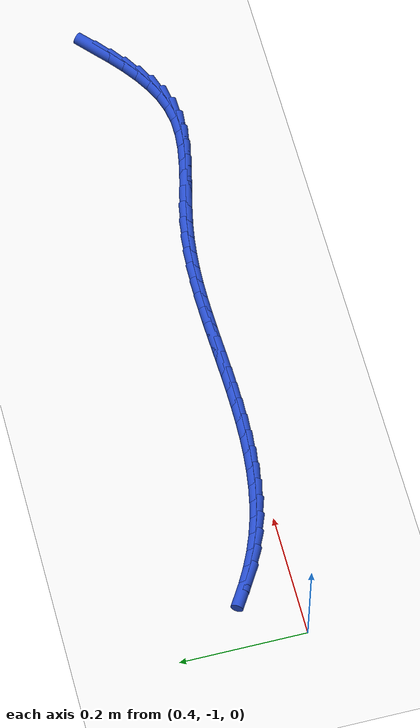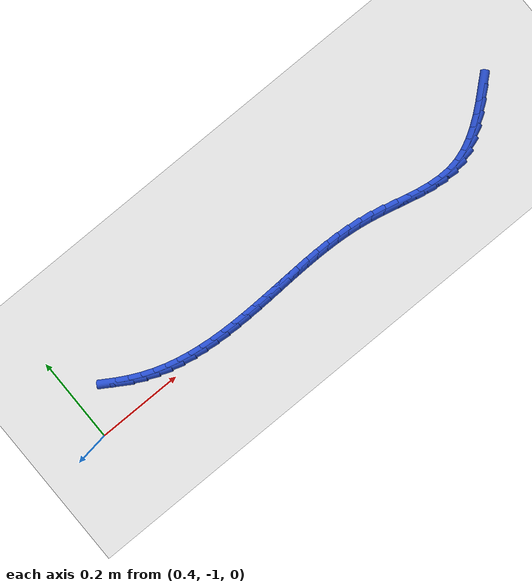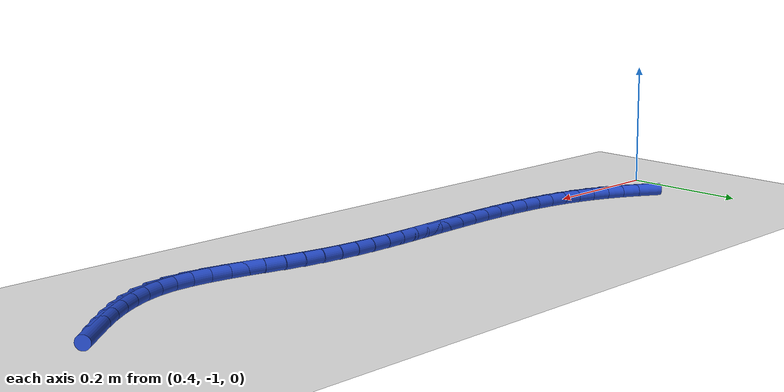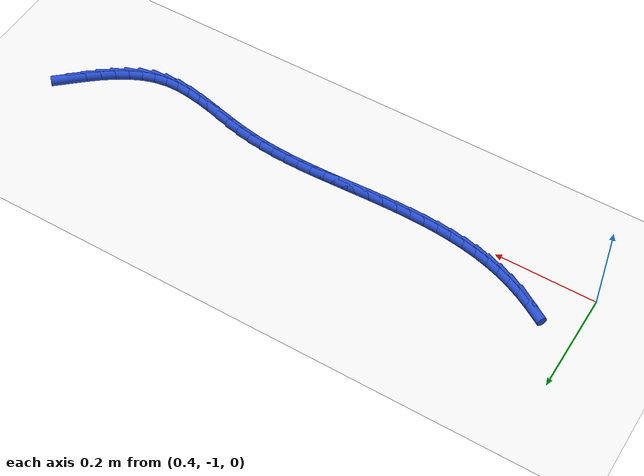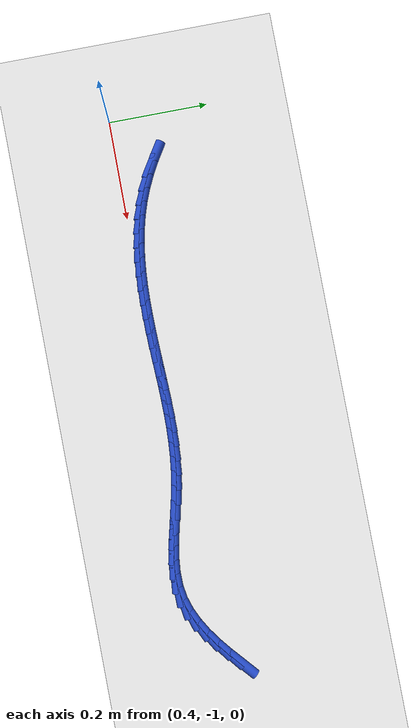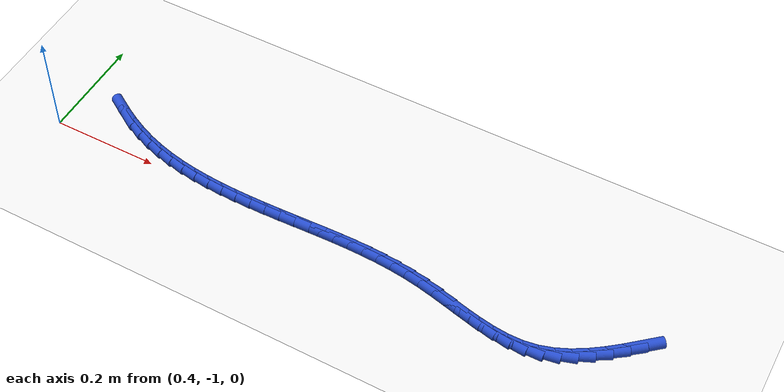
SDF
<sdf version="1.6">
 <world name="default">
  <model name="ground_plane">
   <static>1</static>
   <link name="link">
    <collision name="collision">
     <geometry><plane><normal>0 0 1</normal><size>100 100</size></plane></geometry>
     <surface><friction><ode><mu>100</mu><mu2>50</mu2></ode></friction></surface>
    </collision>
    <visual name="visual">
     <cast_shadows>0</cast_shadows>
     <geometry><plane><normal>0 0 1</normal><size>100 100</size></plane></geometry>
     <material>
      <script><uri>file://media/materials/scripts/gazebo.material</uri><name>Gazebo/WhiteGlow</name></script>
     </material>
    </visual>
   </link>
  </model>
  <model name="line">
   <link name="link_155">
    <pose>1.507306309424929 -0.9425531663431869 0.01 0 1.57 0.7214797284094565</pose>
    <collision name="collision">
     <geometry><cylinder><radius>0.01</radius><length>0.08</length></cylinder></geometry>
    </collision>
    <visual name="visual">
     <material>
      <script><name>Gazebo/Blue</name><uri>file://media/materials/scripts/gazebo.material</uri></script>
     </material>
     <geometry><cylinder><radius>0.01</radius><length>0.08</length></cylinder></geometry>
    </visual>
   </link>
   <link name="link_156">
    <pose>1.4848111989612758 -0.962341874558644 0.01 0 1.57 0.6795479382213688</pose>
    <collision name="collision">
     <geometry><cylinder><radius>0.01</radius><length>0.08</length></cylinder></geometry>
    </collision>
    <visual name="visual">
     <material>
      <script><name>Gazebo/Blue</name><uri>file://media/materials/scripts/gazebo.material</uri></script>
     </material>
     <geometry><cylinder><radius>0.01</radius><length>0.08</length></cylinder></geometry>
    </visual>
   </link>
   <link name="link_157">
    <pose>1.461996702866323 -0.9807740246340374 0.01 0 1.57 0.6192825243936706</pose>
    <collision name="collision">
     <geometry><cylinder><radius>0.01</radius><length>0.08</length></cylinder></geometry>
    </collision>
    <visual name="visual">
     <material>
      <script><name>Gazebo/Blue</name><uri>file://media/materials/scripts/gazebo.material</uri></script>
     </material>
     <geometry><cylinder><radius>0.01</radius><length>0.08</length></cylinder></geometry>
    </visual>
   </link>
   <link name="link_158">
    <pose>1.438749209625258 -0.9973454518386562 0.01 0 1.57 0.5382559575563259</pose>
    <collision name="collision">
     <geometry><cylinder><radius>0.01</radius><length>0.08</length></cylinder></geometry>
    </collision>
    <visual name="visual">
     <material>
      <script><name>Gazebo/Blue</name><uri>file://media/materials/scripts/gazebo.material</uri></script>
     </material>
     <geometry><cylinder><radius>0.01</radius><length>0.08</length></cylinder></geometry>
    </visual>
   </link>
   <link name="link_159">
    <pose>1.4149551077232643 -1.0115519914417892 0.01 0 1.57 0.43412155657971074</pose>
    <collision name="collision">
     <geometry><cylinder><radius>0.01</radius><length>0.08</length></cylinder></geometry>
    </collision>
    <visual name="visual">
     <material>
      <script><name>Gazebo/Blue</name><uri>file://media/materials/scripts/gazebo.material</uri></script>
     </material>
     <geometry><cylinder><radius>0.01</radius><length>0.08</length></cylinder></geometry>
    </visual>
   </link>
   <link name="link_160">
    <pose>1.3905007856455291 -1.022889478712727 0.01 0 1.57 0.3057882115782092</pose>
    <collision name="collision">
     <geometry><cylinder><radius>0.01</radius><length>0.08</length></cylinder></geometry>
    </collision>
    <visual name="visual">
     <material>
      <script><name>Gazebo/Blue</name><uri>file://media/materials/scripts/gazebo.material</uri></script>
     </material>
     <geometry><cylinder><radius>0.01</radius><length>0.08</length></cylinder></geometry>
    </visual>
   </link>
   <link name="link_161">
    <pose>1.365272631877237 -1.0308537489207579 0.01 0 1.57 0.15624790139943803</pose>
    <collision name="collision">
     <geometry><cylinder><radius>0.01</radius><length>0.08</length></cylinder></geometry>
    </collision>
    <visual name="visual">
     <material>
      <script><name>Gazebo/Blue</name><uri>file://media/materials/scripts/gazebo.material</uri></script>
     </material>
     <geometry><cylinder><radius>0.01</radius><length>0.08</length></cylinder></geometry>
    </visual>
   </link>
   <link name="link_162">
    <pose>1.339162601989869 -1.0349669130169603 0.01 0 1.57 0.014458430025924094</pose>
    <collision name="collision">
     <geometry><cylinder><radius>0.01</radius><length>0.08</length></cylinder></geometry>
    </collision>
    <visual name="visual">
     <material>
      <script><name>Gazebo/Blue</name><uri>file://media/materials/scripts/gazebo.material</uri></script>
     </material>
     <geometry><cylinder><radius>0.01</radius><length>0.08</length></cylinder></geometry>
    </visual>
   </link>
   <link name="link_163">
    <pose>1.3121910090530808 -1.0353569070820956 0.01 0 1.57 -0.09359081783881208</pose>
    <collision name="collision">
     <geometry><cylinder><radius>0.01</radius><length>0.08</length></cylinder></geometry>
    </collision>
    <visual name="visual">
     <material>
      <script><name>Gazebo/Blue</name><uri>file://media/materials/scripts/gazebo.material</uri></script>
     </material>
     <geometry><cylinder><radius>0.01</radius><length>0.08</length></cylinder></geometry>
    </visual>
   </link>
   <link name="link_164">
    <pose>1.284506698607868 -1.0327583181696307 0.01 0 1.57 -0.16924709904499669</pose>
    <collision name="collision">
     <geometry><cylinder><radius>0.01</radius><length>0.08</length></cylinder></geometry>
    </collision>
    <visual name="visual">
     <material>
      <script><name>Gazebo/Blue</name><uri>file://media/materials/scripts/gazebo.material</uri></script>
     </material>
     <geometry><cylinder><radius>0.01</radius><length>0.08</length></cylinder></geometry>
    </visual>
   </link>
   <link name="link_165">
    <pose>1.256264118276178 -1.0279321741835208 0.01 0 1.57 -0.216232717094848</pose>
    <collision name="collision">
     <geometry><cylinder><radius>0.01</radius><length>0.08</length></cylinder></geometry>
    </collision>
    <visual name="visual">
     <material>
      <script><name>Gazebo/Blue</name><uri>file://media/materials/scripts/gazebo.material</uri></script>
     </material>
     <geometry><cylinder><radius>0.01</radius><length>0.08</length></cylinder></geometry>
    </visual>
   </link>
   <link name="link_166">
    <pose>1.2276177156799584 -1.0216395030277208 0.01 0 1.57 -0.23761147607711505</pose>
    <collision name="collision">
     <geometry><cylinder><radius>0.01</radius><length>0.08</length></cylinder></geometry>
    </collision>
    <visual name="visual">
     <material>
      <script><name>Gazebo/Blue</name><uri>file://media/materials/scripts/gazebo.material</uri></script>
     </material>
     <geometry><cylinder><radius>0.01</radius><length>0.08</length></cylinder></geometry>
    </visual>
   </link>
   <link name="link_167">
    <pose>1.1987219384411576 -1.0146413326061863 0.01 0 1.57 -0.23505154469730677</pose>
    <collision name="collision">
     <geometry><cylinder><radius>0.01</radius><length>0.08</length></cylinder></geometry>
    </collision>
    <visual name="visual">
     <material>
      <script><name>Gazebo/Blue</name><uri>file://media/materials/scripts/gazebo.material</uri></script>
     </material>
     <geometry><cylinder><radius>0.01</radius><length>0.08</length></cylinder></geometry>
    </visual>
   </link>
   <link name="link_168">
    <pose>1.169731234181722 -1.0076986908228724 0.01 0 1.57 -0.2086646734113698</pose>
    <collision name="collision">
     <geometry><cylinder><radius>0.01</radius><length>0.08</length></cylinder></geometry>
    </collision>
    <visual name="visual">
     <material>
      <script><name>Gazebo/Blue</name><uri>file://media/materials/scripts/gazebo.material</uri></script>
     </material>
     <geometry><cylinder><radius>0.01</radius><length>0.08</length></cylinder></geometry>
    </visual>
   </link>
   <link name="link_169">
    <pose>1.1408000501317748 -1.001572603713776 0.01 0 1.57 -0.16260902705012623</pose>
    <collision name="collision">
     <geometry><cylinder><radius>0.01</radius><length>0.08</length></cylinder></geometry>
    </collision>
    <visual name="visual">
     <material>
      <script><name>Gazebo/Blue</name><uri>file://media/materials/scripts/gazebo.material</uri></script>
     </material>
     <geometry><cylinder><radius>0.01</radius><length>0.08</length></cylinder></geometry>
    </visual>
   </link>
   <link name="link_170">
    <pose>1.1120474737868935 -0.9968555259299609 0.01 0 1.57 -0.11649344777591115</pose>
    <collision name="collision">
     <geometry><cylinder><radius>0.01</radius><length>0.08</length></cylinder></geometry>
    </collision>
    <visual name="visual">
     <material>
      <script><name>Gazebo/Blue</name><uri>file://media/materials/scripts/gazebo.material</uri></script>
     </material>
     <geometry><cylinder><radius>0.01</radius><length>0.08</length></cylinder></geometry>
    </visual>
   </link>
   <link name="link_171">
    <pose>1.0834605001633624 -0.9935101841999918 0.01 0 1.57 -0.07566354206697357</pose>
    <collision name="collision">
     <geometry><cylinder><radius>0.01</radius><length>0.08</length></cylinder></geometry>
    </collision>
    <visual name="visual">
     <material>
      <script><name>Gazebo/Blue</name><uri>file://media/materials/scripts/gazebo.material</uri></script>
     </material>
     <geometry><cylinder><radius>0.01</radius><length>0.08</length></cylinder></geometry>
    </visual>
   </link>
   <link name="link_172">
    <pose>1.0549952852755464 -0.9913522856740834 0.01 0 1.57 -0.04065592242352165</pose>
    <collision name="collision">
     <geometry><cylinder><radius>0.01</radius><length>0.08</length></cylinder></geometry>
    </collision>
    <visual name="visual">
     <material>
      <script><name>Gazebo/Blue</name><uri>file://media/materials/scripts/gazebo.material</uri></script>
     </material>
     <geometry><cylinder><radius>0.01</radius><length>0.08</length></cylinder></geometry>
    </visual>
   </link>
   <link name="link_173">
    <pose>1.0266079851378116 -0.9901975375024495 0.01 0 1.57 -0.011846091700585969</pose>
    <collision name="collision">
     <geometry><cylinder><radius>0.01</radius><length>0.08</length></cylinder></geometry>
    </collision>
    <visual name="visual">
     <material>
      <script><name>Gazebo/Blue</name><uri>file://media/materials/scripts/gazebo.material</uri></script>
     </material>
     <geometry><cylinder><radius>0.01</radius><length>0.08</length></cylinder></geometry>
    </visual>
   </link>
   <link name="link_174">
    <pose>0.9982547557645232 -0.9898616468353055 0.01 0 1.57 0.010530018722979064</pose>
    <collision name="collision">
     <geometry><cylinder><radius>0.01</radius><length>0.08</length></cylinder></geometry>
    </collision>
    <visual name="visual">
     <material>
      <script><name>Gazebo/Blue</name><uri>file://media/materials/scripts/gazebo.material</uri></script>
     </material>
     <geometry><cylinder><radius>0.01</radius><length>0.08</length></cylinder></geometry>
    </visual>
   </link>
   <link name="link_175">
    <pose>0.9698917531700467 -0.9901603208228663 0.01 0 1.57 0.026349807105518125</pose>
    <collision name="collision">
     <geometry><cylinder><radius>0.01</radius><length>0.08</length></cylinder></geometry>
    </collision>
    <visual name="visual">
     <material>
      <script><name>Gazebo/Blue</name><uri>file://media/materials/scripts/gazebo.material</uri></script>
     </material>
     <geometry><cylinder><radius>0.01</radius><length>0.08</length></cylinder></geometry>
    </visual>
   </link>
   <link name="link_176">
    <pose>0.9414751333687489 -0.9909092666153456 0.01 0 1.57 0.03557878874381856</pose>
    <collision name="collision">
     <geometry><cylinder><radius>0.01</radius><length>0.08</length></cylinder></geometry>
    </collision>
    <visual name="visual">
     <material>
      <script><name>Gazebo/Blue</name><uri>file://media/materials/scripts/gazebo.material</uri></script>
     </material>
     <geometry><cylinder><radius>0.01</radius><length>0.08</length></cylinder></geometry>
    </visual>
   </link>
   <link name="link_177">
    <pose>0.9129610523749943 -0.9919241913629585 0.01 0 1.57 0.0382502606498414</pose>
    <collision name="collision">
     <geometry><cylinder><radius>0.01</radius><length>0.08</length></cylinder></geometry>
    </collision>
    <visual name="visual">
     <material>
      <script><name>Gazebo/Blue</name><uri>file://media/materials/scripts/gazebo.material</uri></script>
     </material>
     <geometry><cylinder><radius>0.01</radius><length>0.08</length></cylinder></geometry>
    </visual>
   </link>
   <link name="link_178">
    <pose>0.8843056662031493 -0.9930208022159196 0.01 0 1.57 0.03455274502027777</pose>
    <collision name="collision">
     <geometry><cylinder><radius>0.01</radius><length>0.08</length></cylinder></geometry>
    </collision>
    <visual name="visual">
     <material>
      <script><name>Gazebo/Blue</name><uri>file://media/materials/scripts/gazebo.material</uri></script>
     </material>
     <geometry><cylinder><radius>0.01</radius><length>0.08</length></cylinder></geometry>
    </visual>
   </link>
   <link name="link_179">
    <pose>0.8554766396547306 -0.9940173208295945 0.01 0 1.57 0.02524204068626965</pose>
    <collision name="collision">
     <geometry><cylinder><radius>0.01</radius><length>0.08</length></cylinder></geometry>
    </collision>
    <visual name="visual">
     <material>
      <script><name>Gazebo/Blue</name><uri>file://media/materials/scripts/gazebo.material</uri></script>
     </material>
     <geometry><cylinder><radius>0.01</radius><length>0.08</length></cylinder></geometry>
    </visual>
   </link>
   <link name="link_180">
    <pose>0.8265171725130835 -0.9947484721709801 0.01 0 1.57 0.0105855212955791</pose>
    <collision name="collision">
     <geometry><cylinder><radius>0.01</radius><length>0.08</length></cylinder></geometry>
    </collision>
    <visual name="visual">
     <material>
      <script><name>Gazebo/Blue</name><uri>file://media/materials/scripts/gazebo.material</uri></script>
     </material>
     <geometry><cylinder><radius>0.01</radius><length>0.08</length></cylinder></geometry>
    </visual>
   </link>
   <link name="link_181">
    <pose>0.797500922264351 -0.9950556357788862 0.01 0 1.57 -0.009497401096544084</pose>
    <collision name="collision">
     <geometry><cylinder><radius>0.01</radius><length>0.08</length></cylinder></geometry>
    </collision>
    <visual name="visual">
     <material>
      <script><name>Gazebo/Blue</name><uri>file://media/materials/scripts/gazebo.material</uri></script>
     </material>
     <geometry><cylinder><radius>0.01</radius><length>0.08</length></cylinder></geometry>
    </visual>
   </link>
   <link name="link_182">
    <pose>0.7685016306162707 -0.994780209593334 0.01 0 1.57 -0.03515215447206459</pose>
    <collision name="collision">
     <geometry><cylinder><radius>0.01</radius><length>0.08</length></cylinder></geometry>
    </collision>
    <visual name="visual">
     <material>
      <script><name>Gazebo/Blue</name><uri>file://media/materials/scripts/gazebo.material</uri></script>
     </material>
     <geometry><cylinder><radius>0.01</radius><length>0.08</length></cylinder></geometry>
    </visual>
   </link>
   <link name="link_183">
    <pose>0.7395930392765804 -0.9937635915543452 0.01 0 1.57 -0.06657285105952863</pose>
    <collision name="collision">
     <geometry><cylinder><radius>0.01</radius><length>0.08</length></cylinder></geometry>
    </collision>
    <visual name="visual">
     <material>
      <script><name>Gazebo/Blue</name><uri>file://media/materials/scripts/gazebo.material</uri></script>
     </material>
     <geometry><cylinder><radius>0.01</radius><length>0.08</length></cylinder></geometry>
    </visual>
   </link>
   <link name="link_184">
    <pose>0.7108488899530163 -0.9918471796019405 0.01 0 1.57 -0.10398100435959866</pose>
    <collision name="collision">
     <geometry><cylinder><radius>0.01</radius><length>0.08</length></cylinder></geometry>
    </collision>
    <visual name="visual">
     <material>
      <script><name>Gazebo/Blue</name><uri>file://media/materials/scripts/gazebo.material</uri></script>
     </material>
     <geometry><cylinder><radius>0.01</radius><length>0.08</length></cylinder></geometry>
    </visual>
   </link>
   <link name="link_185">
    <pose>0.6823429243533176 -0.988872371676142 0.01 0 1.57 -0.1475958321556006</pose>
    <collision name="collision">
     <geometry><cylinder><radius>0.01</radius><length>0.08</length></cylinder></geometry>
    </collision>
    <visual name="visual">
     <material>
      <script><name>Gazebo/Blue</name><uri>file://media/materials/scripts/gazebo.material</uri></script>
     </material>
     <geometry><cylinder><radius>0.01</radius><length>0.08</length></cylinder></geometry>
    </visual>
   </link>
   <link name="link_186">
    <pose>0.6541488841852208 -0.98468056571697 0.01 0 1.57 -0.1975937299481435</pose>
    <collision name="collision">
     <geometry><cylinder><radius>0.01</radius><length>0.08</length></cylinder></geometry>
    </collision>
    <visual name="visual">
     <material>
      <script><name>Gazebo/Blue</name><uri>file://media/materials/scripts/gazebo.material</uri></script>
     </material>
     <geometry><cylinder><radius>0.01</radius><length>0.08</length></cylinder></geometry>
    </visual>
   </link>
   <link name="link_187">
    <pose>0.6263405111564639 -0.9791131596644471 0.01 0 1.57 -0.25405559540453737</pose>
    <collision name="collision">
     <geometry><cylinder><radius>0.01</radius><length>0.08</length></cylinder></geometry>
    </collision>
    <visual name="visual">
     <material>
      <script><name>Gazebo/Blue</name><uri>file://media/materials/scripts/gazebo.material</uri></script>
     </material>
     <geometry><cylinder><radius>0.01</radius><length>0.08</length></cylinder></geometry>
    </visual>
   </link>
   <link name="link_188">
    <pose>0.5989915469747835 -0.9720115514585936 0.01 0 1.57 -0.3168979930983069</pose>
    <collision name="collision">
     <geometry><cylinder><radius>0.01</radius><length>0.08</length></cylinder></geometry>
    </collision>
    <visual name="visual">
     <material>
      <script><name>Gazebo/Blue</name><uri>file://media/materials/scripts/gazebo.material</uri></script>
     </material>
     <geometry><cylinder><radius>0.01</radius><length>0.08</length></cylinder></geometry>
    </visual>
   </link>
   <link name="link_189">
    <pose>0.572175703495215 -0.9632172885226794 0.01 0 1.57 -0.38324047682471013</pose>
    <collision name="collision">
     <geometry><cylinder><radius>0.01</radius><length>0.08</length></cylinder></geometry>
    </collision>
    <visual name="visual">
     <material>
      <script><name>Gazebo/Blue</name><uri>file://media/materials/scripts/gazebo.material</uri></script>
     </material>
     <geometry><cylinder><radius>0.01</radius><length>0.08</length></cylinder></geometry>
    </visual>
   </link>
   <link name="link_190">
    <pose>0.5459521743569837 -0.9526446162203269 0.01 0 1.57 -0.44607949629098037</pose>
    <collision name="collision">
     <geometry><cylinder><radius>0.01</radius><length>0.08</length></cylinder></geometry>
    </collision>
    <visual name="visual">
     <material>
      <script><name>Gazebo/Blue</name><uri>file://media/materials/scripts/gazebo.material</uri></script>
     </material>
     <geometry><cylinder><radius>0.01</radius><length>0.08</length></cylinder></geometry>
    </visual>
   </link>
   <link name="link_191">
    <pose>0.52034231627577 -0.9403972430315267 0.01 0 1.57 -0.5043290955334235</pose>
    <collision name="collision">
     <geometry><cylinder><radius>0.01</radius><length>0.08</length></cylinder></geometry>
    </collision>
    <visual name="visual">
     <material>
      <script><name>Gazebo/Blue</name><uri>file://media/materials/scripts/gazebo.material</uri></script>
     </material>
     <geometry><cylinder><radius>0.01</radius><length>0.08</length></cylinder></geometry>
    </visual>
   </link>
   <link name="link_192">
    <pose>0.4953613999552063 -0.9266093522925871 0.01 0 1.57 -0.5581200521715699</pose>
    <collision name="collision">
     <geometry><cylinder><radius>0.01</radius><length>0.08</length></cylinder></geometry>
    </collision>
    <visual name="visual">
     <material>
      <script><name>Gazebo/Blue</name><uri>file://media/materials/scripts/gazebo.material</uri></script>
     </material>
     <geometry><cylinder><radius>0.01</radius><length>0.08</length></cylinder></geometry>
    </visual>
   </link>
  </model>
 </world>
</sdf>
